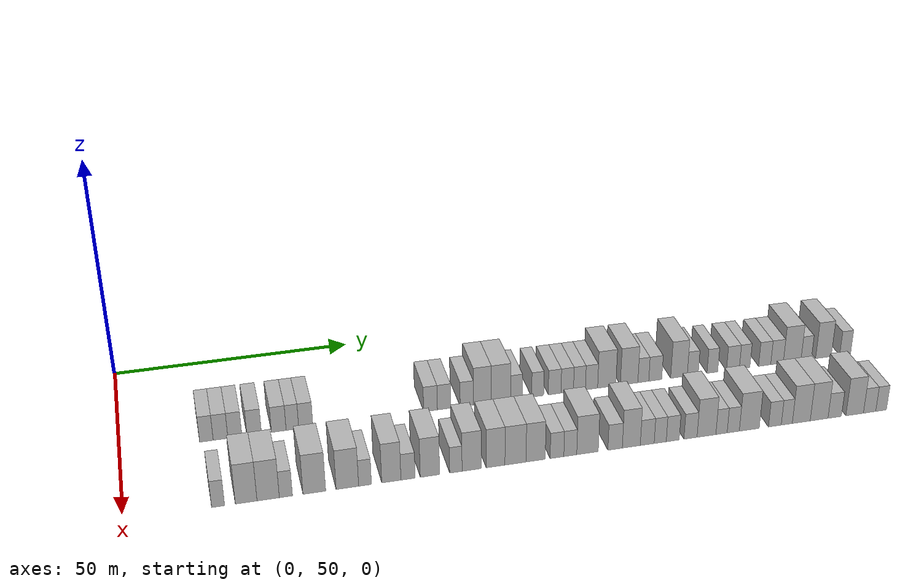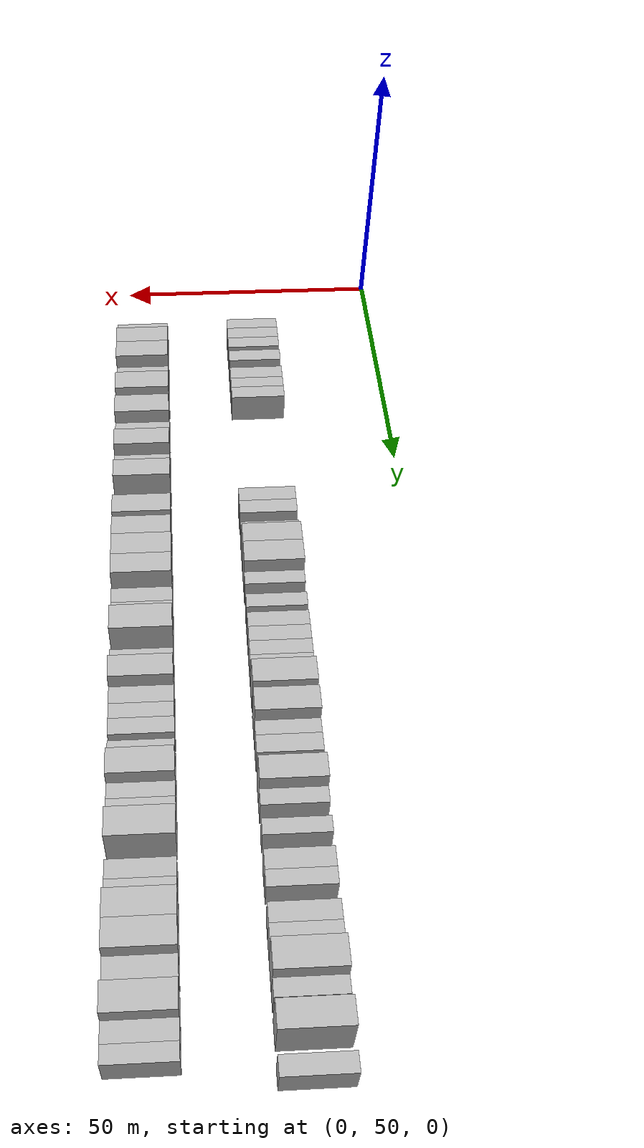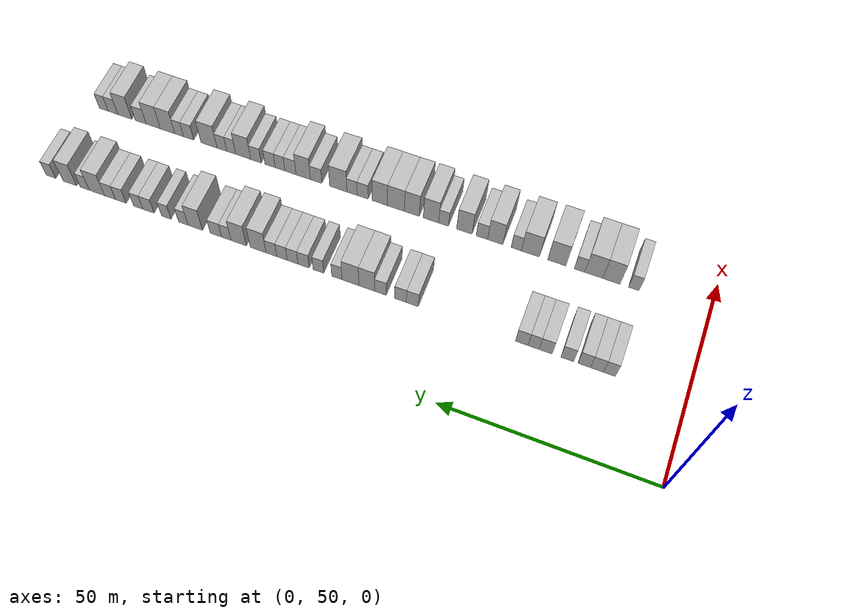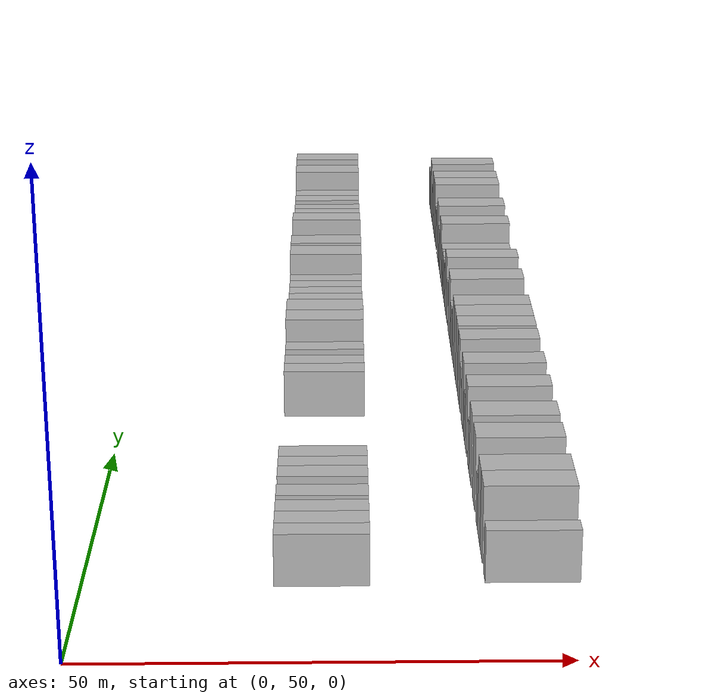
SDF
<sdf version="1.6">
 <world name="default">
  <model name="building_71">
   <static>1</static>
   <pose>25.0000 67.1257 0 0.000000 0.000000 0.000000</pose>
   <link name="link">
    <pose>0 0 3.00 0 0 0</pose>
    <collision name="collision"><geometry><box><size>10.0000 2.6948 6.0000</size></box></geometry></collision>
    <visual name="visual">
     <cast_shadows>0</cast_shadows>
     <geometry><box><size>10.0000 2.6948 6.0000</size></box></geometry>
     <material>
      <script>
       <uri>model://HANNAS_wall/materials/scripts</uri>
       <uri>model://HANNAS_wall/materials/textures</uri>
       <name>vrc/HANNAS_wall</name>
      </script>
     </material>
    </visual>
   </link>
  </model>
  <model name="building_72">
   <static>1</static>
   <pose>25.0000 69.9310 0 0.000000 0.000000 0.000000</pose>
   <link name="link">
    <pose>0 0 3.00 0 0 0</pose>
    <collision name="collision"><geometry><box><size>10.0000 2.9158 6.0000</size></box></geometry></collision>
    <visual name="visual">
     <cast_shadows>0</cast_shadows>
     <geometry><box><size>10.0000 2.9158 6.0000</size></box></geometry>
     <material>
      <script>
       <uri>model://HANNAS_wall/materials/scripts</uri>
       <uri>model://HANNAS_wall/materials/textures</uri>
       <name>vrc/HANNAS_wall</name>
      </script>
     </material>
    </visual>
   </link>
  </model>
  <model name="building_73">
   <static>1</static>
   <pose>25.0000 72.7919 0 0.000000 0.000000 0.000000</pose>
   <link name="link">
    <pose>0 0 3.00 0 0 0</pose>
    <collision name="collision"><geometry><box><size>10.0000 2.8061 6.0000</size></box></geometry></collision>
    <visual name="visual">
     <cast_shadows>0</cast_shadows>
     <geometry><box><size>10.0000 2.8061 6.0000</size></box></geometry>
     <material>
      <script>
       <uri>model://HANNAS_wall/materials/scripts</uri>
       <uri>model://HANNAS_wall/materials/textures</uri>
       <name>vrc/HANNAS_wall</name>
      </script>
     </material>
    </visual>
   </link>
  </model>
  <model name="building_74">
   <static>1</static>
   <pose>25.0000 76.6522 0 0.000000 0.000000 0.000000</pose>
   <link name="link">
    <pose>0 0 3.00 0 0 0</pose>
    <collision name="collision"><geometry><box><size>10.0000 2.9145 6.0000</size></box></geometry></collision>
    <visual name="visual">
     <cast_shadows>0</cast_shadows>
     <geometry><box><size>10.0000 2.9145 6.0000</size></box></geometry>
     <material>
      <script>
       <uri>model://HANNAS_wall/materials/scripts</uri>
       <uri>model://HANNAS_wall/materials/textures</uri>
       <name>vrc/HANNAS_wall</name>
      </script>
     </material>
    </visual>
   </link>
  </model>
  <model name="building_75">
   <static>1</static>
   <pose>25.0000 81.5938 0 0.000000 0.000000 0.000000</pose>
   <link name="link">
    <pose>0 0 3.00 0 0 0</pose>
    <collision name="collision"><geometry><box><size>10.0000 2.9687 6.0000</size></box></geometry></collision>
    <visual name="visual">
     <cast_shadows>0</cast_shadows>
     <geometry><box><size>10.0000 2.9687 6.0000</size></box></geometry>
     <material>
      <script>
       <uri>model://HANNAS_wall/materials/scripts</uri>
       <uri>model://HANNAS_wall/materials/textures</uri>
       <name>vrc/HANNAS_wall</name>
      </script>
     </material>
    </visual>
   </link>
  </model>
  <model name="building_76">
   <static>1</static>
   <pose>25.0000 84.3534 0 0.000000 0.000000 0.000000</pose>
   <link name="link">
    <pose>0 0 3.00 0 0 0</pose>
    <collision name="collision"><geometry><box><size>10.0000 2.5506 6.0000</size></box></geometry></collision>
    <visual name="visual">
     <cast_shadows>0</cast_shadows>
     <geometry><box><size>10.0000 2.5506 6.0000</size></box></geometry>
     <material>
      <script>
       <uri>model://HANNAS_wall/materials/scripts</uri>
       <uri>model://HANNAS_wall/materials/textures</uri>
       <name>vrc/HANNAS_wall</name>
      </script>
     </material>
    </visual>
   </link>
  </model>
  <model name="building_77">
   <static>1</static>
   <pose>25.0000 87.0735 0 0.000000 0.000000 0.000000</pose>
   <link name="link">
    <pose>0 0 3.00 0 0 0</pose>
    <collision name="collision"><geometry><box><size>10.0000 2.8895 6.0000</size></box></geometry></collision>
    <visual name="visual">
     <cast_shadows>0</cast_shadows>
     <geometry><box><size>10.0000 2.8895 6.0000</size></box></geometry>
     <material>
      <script>
       <uri>model://HANNAS_wall/materials/scripts</uri>
       <uri>model://HANNAS_wall/materials/textures</uri>
       <name>vrc/HANNAS_wall</name>
      </script>
     </material>
    </visual>
   </link>
  </model>
  <model name="building_78">
   <static>1</static>
   <pose>25.0000 112.8600 0 0.000000 0.000000 0.000000</pose>
   <link name="link">
    <pose>0 0 3.00 0 0 0</pose>
    <collision name="collision"><geometry><box><size>10.0000 2.8945 6.0000</size></box></geometry></collision>
    <visual name="visual">
     <cast_shadows>0</cast_shadows>
     <geometry><box><size>10.0000 2.8945 6.0000</size></box></geometry>
     <material>
      <script>
       <uri>model://HANNAS_wall/materials/scripts</uri>
       <uri>model://HANNAS_wall/materials/textures</uri>
       <name>vrc/HANNAS_wall</name>
      </script>
     </material>
    </visual>
   </link>
  </model>
  <model name="building_79">
   <static>1</static>
   <pose>25.0000 115.7185 0 0.000000 0.000000 0.000000</pose>
   <link name="link">
    <pose>0 0 3.00 0 0 0</pose>
    <collision name="collision"><geometry><box><size>10.0000 2.8224 6.0000</size></box></geometry></collision>
    <visual name="visual">
     <cast_shadows>0</cast_shadows>
     <geometry><box><size>10.0000 2.8224 6.0000</size></box></geometry>
     <material>
      <script>
       <uri>model://HANNAS_wall/materials/scripts</uri>
       <uri>model://HANNAS_wall/materials/textures</uri>
       <name>vrc/HANNAS_wall</name>
      </script>
     </material>
    </visual>
   </link>
  </model>
  <model name="building_80">
   <static>1</static>
   <pose>25.0000 120.5325 0 0.000000 0.000000 0.000000</pose>
   <link name="link">
    <pose>0 0 3.00 0 0 0</pose>
    <collision name="collision"><geometry><box><size>10.0000 2.8056 6.0000</size></box></geometry></collision>
    <visual name="visual">
     <cast_shadows>0</cast_shadows>
     <geometry><box><size>10.0000 2.8056 6.0000</size></box></geometry>
     <material>
      <script>
       <uri>model://HANNAS_wall/materials/scripts</uri>
       <uri>model://HANNAS_wall/materials/textures</uri>
       <name>vrc/HANNAS_wall</name>
      </script>
     </material>
    </visual>
   </link>
  </model>
  <model name="building_81">
   <static>1</static>
   <pose>25.0000 123.8566 0 0.000000 0.000000 0.000000</pose>
   <link name="link">
    <pose>0 0 4.50 0 0 0</pose>
    <collision name="collision"><geometry><box><size>10.0000 3.8425 9.0000</size></box></geometry></collision>
    <visual name="visual">
     <cast_shadows>0</cast_shadows>
     <geometry><box><size>10.0000 3.8425 9.0000</size></box></geometry>
     <material>
      <script>
       <uri>model://HANNAS_wall/materials/scripts</uri>
       <uri>model://HANNAS_wall/materials/textures</uri>
       <name>vrc/HANNAS_wall</name>
      </script>
     </material>
    </visual>
   </link>
  </model>
  <model name="building_82">
   <static>1</static>
   <pose>25.0000 127.8513 0 0.000000 0.000000 0.000000</pose>
   <link name="link">
    <pose>0 0 4.50 0 0 0</pose>
    <collision name="collision"><geometry><box><size>10.0000 4.1468 9.0000</size></box></geometry></collision>
    <visual name="visual">
     <cast_shadows>0</cast_shadows>
     <geometry><box><size>10.0000 4.1468 9.0000</size></box></geometry>
     <material>
      <script>
       <uri>model://HANNAS_wall/materials/scripts</uri>
       <uri>model://HANNAS_wall/materials/textures</uri>
       <name>vrc/HANNAS_wall</name>
      </script>
     </material>
    </visual>
   </link>
  </model>
  <model name="building_83">
   <static>1</static>
   <pose>25.0000 131.1827 0 0.000000 0.000000 0.000000</pose>
   <link name="link">
    <pose>0 0 3.00 0 0 0</pose>
    <collision name="collision"><geometry><box><size>10.0000 2.5160 6.0000</size></box></geometry></collision>
    <visual name="visual">
     <cast_shadows>0</cast_shadows>
     <geometry><box><size>10.0000 2.5160 6.0000</size></box></geometry>
     <material>
      <script>
       <uri>model://HANNAS_wall/materials/scripts</uri>
       <uri>model://HANNAS_wall/materials/textures</uri>
       <name>vrc/HANNAS_wall</name>
      </script>
     </material>
    </visual>
   </link>
  </model>
  <model name="building_84">
   <static>1</static>
   <pose>25.0000 135.7359 0 0.000000 0.000000 0.000000</pose>
   <link name="link">
    <pose>0 0 3.00 0 0 0</pose>
    <collision name="collision"><geometry><box><size>10.0000 2.5904 6.0000</size></box></geometry></collision>
    <visual name="visual">
     <cast_shadows>0</cast_shadows>
     <geometry><box><size>10.0000 2.5904 6.0000</size></box></geometry>
     <material>
      <script>
       <uri>model://HANNAS_wall/materials/scripts</uri>
       <uri>model://HANNAS_wall/materials/textures</uri>
       <name>vrc/HANNAS_wall</name>
      </script>
     </material>
    </visual>
   </link>
  </model>
  <model name="building_85">
   <static>1</static>
   <pose>25.0000 139.4164 0 0.000000 0.000000 0.000000</pose>
   <link name="link">
    <pose>0 0 3.00 0 0 0</pose>
    <collision name="collision"><geometry><box><size>10.0000 2.7707 6.0000</size></box></geometry></collision>
    <visual name="visual">
     <cast_shadows>0</cast_shadows>
     <geometry><box><size>10.0000 2.7707 6.0000</size></box></geometry>
     <material>
      <script>
       <uri>model://HANNAS_wall/materials/scripts</uri>
       <uri>model://HANNAS_wall/materials/textures</uri>
       <name>vrc/HANNAS_wall</name>
      </script>
     </material>
    </visual>
   </link>
  </model>
  <model name="building_86">
   <static>1</static>
   <pose>25.0000 142.1635 0 0.000000 0.000000 0.000000</pose>
   <link name="link">
    <pose>0 0 3.00 0 0 0</pose>
    <collision name="collision"><geometry><box><size>10.0000 2.7235 6.0000</size></box></geometry></collision>
    <visual name="visual">
     <cast_shadows>0</cast_shadows>
     <geometry><box><size>10.0000 2.7235 6.0000</size></box></geometry>
     <material>
      <script>
       <uri>model://HANNAS_wall/materials/scripts</uri>
       <uri>model://HANNAS_wall/materials/textures</uri>
       <name>vrc/HANNAS_wall</name>
      </script>
     </material>
    </visual>
   </link>
  </model>
  <model name="building_87">
   <static>1</static>
   <pose>25.0000 144.8318 0 0.000000 0.000000 0.000000</pose>
   <link name="link">
    <pose>0 0 3.00 0 0 0</pose>
    <collision name="collision"><geometry><box><size>10.0000 2.6130 6.0000</size></box></geometry></collision>
    <visual name="visual">
     <cast_shadows>0</cast_shadows>
     <geometry><box><size>10.0000 2.6130 6.0000</size></box></geometry>
     <material>
      <script>
       <uri>model://HANNAS_wall/materials/scripts</uri>
       <uri>model://HANNAS_wall/materials/textures</uri>
       <name>vrc/HANNAS_wall</name>
      </script>
     </material>
    </visual>
   </link>
  </model>
  <model name="building_88">
   <static>1</static>
   <pose>25.0000 147.4848 0 0.000000 0.000000 0.000000</pose>
   <link name="link">
    <pose>0 0 3.00 0 0 0</pose>
    <collision name="collision"><geometry><box><size>10.0000 2.6929 6.0000</size></box></geometry></collision>
    <visual name="visual">
     <cast_shadows>0</cast_shadows>
     <geometry><box><size>10.0000 2.6929 6.0000</size></box></geometry>
     <material>
      <script>
       <uri>model://HANNAS_wall/materials/scripts</uri>
       <uri>model://HANNAS_wall/materials/textures</uri>
       <name>vrc/HANNAS_wall</name>
      </script>
     </material>
    </visual>
   </link>
  </model>
  <model name="building_89">
   <static>1</static>
   <pose>25.0000 150.8435 0 0.000000 0.000000 0.000000</pose>
   <link name="link">
    <pose>0 0 4.50 0 0 0</pose>
    <collision name="collision"><geometry><box><size>10.0000 4.0246 9.0000</size></box></geometry></collision>
    <visual name="visual">
     <cast_shadows>0</cast_shadows>
     <geometry><box><size>10.0000 4.0246 9.0000</size></box></geometry>
     <material>
      <script>
       <uri>model://HANNAS_wall/materials/scripts</uri>
       <uri>model://HANNAS_wall/materials/textures</uri>
       <name>vrc/HANNAS_wall</name>
      </script>
     </material>
    </visual>
   </link>
  </model>
  <model name="building_90">
   <static>1</static>
   <pose>25.0000 155.8043 0 0.000000 0.000000 0.000000</pose>
   <link name="link">
    <pose>0 0 4.50 0 0 0</pose>
    <collision name="collision"><geometry><box><size>10.0000 3.8968 9.0000</size></box></geometry></collision>
    <visual name="visual">
     <cast_shadows>0</cast_shadows>
     <geometry><box><size>10.0000 3.8968 9.0000</size></box></geometry>
     <material>
      <script>
       <uri>model://HANNAS_wall/materials/scripts</uri>
       <uri>model://HANNAS_wall/materials/textures</uri>
       <name>vrc/HANNAS_wall</name>
      </script>
     </material>
    </visual>
   </link>
  </model>
  <model name="building_91">
   <static>1</static>
   <pose>25.0000 158.9642 0 0.000000 0.000000 0.000000</pose>
   <link name="link">
    <pose>0 0 3.00 0 0 0</pose>
    <collision name="collision"><geometry><box><size>10.0000 2.4231 6.0000</size></box></geometry></collision>
    <visual name="visual">
     <cast_shadows>0</cast_shadows>
     <geometry><box><size>10.0000 2.4231 6.0000</size></box></geometry>
     <material>
      <script>
       <uri>model://HANNAS_wall/materials/scripts</uri>
       <uri>model://HANNAS_wall/materials/textures</uri>
       <name>vrc/HANNAS_wall</name>
      </script>
     </material>
    </visual>
   </link>
  </model>
  <model name="building_92">
   <static>1</static>
   <pose>25.0000 161.6344 0 0.000000 0.000000 0.000000</pose>
   <link name="link">
    <pose>0 0 3.00 0 0 0</pose>
    <collision name="collision"><geometry><box><size>10.0000 2.9174 6.0000</size></box></geometry></collision>
    <visual name="visual">
     <cast_shadows>0</cast_shadows>
     <geometry><box><size>10.0000 2.9174 6.0000</size></box></geometry>
     <material>
      <script>
       <uri>model://HANNAS_wall/materials/scripts</uri>
       <uri>model://HANNAS_wall/materials/textures</uri>
       <name>vrc/HANNAS_wall</name>
      </script>
     </material>
    </visual>
   </link>
  </model>
  <model name="building_93">
   <static>1</static>
   <pose>25.0000 166.9565 0 0.000000 0.000000 0.000000</pose>
   <link name="link">
    <pose>0 0 4.50 0 0 0</pose>
    <collision name="collision"><geometry><box><size>10.0000 3.7269 9.0000</size></box></geometry></collision>
    <visual name="visual">
     <cast_shadows>0</cast_shadows>
     <geometry><box><size>10.0000 3.7269 9.0000</size></box></geometry>
     <material>
      <script>
       <uri>model://HANNAS_wall/materials/scripts</uri>
       <uri>model://HANNAS_wall/materials/textures</uri>
       <name>vrc/HANNAS_wall</name>
      </script>
     </material>
    </visual>
   </link>
  </model>
  <model name="building_94">
   <static>1</static>
   <pose>25.0000 170.0667 0 0.000000 0.000000 0.000000</pose>
   <link name="link">
    <pose>0 0 3.00 0 0 0</pose>
    <collision name="collision"><geometry><box><size>10.0000 2.4934 6.0000</size></box></geometry></collision>
    <visual name="visual">
     <cast_shadows>0</cast_shadows>
     <geometry><box><size>10.0000 2.4934 6.0000</size></box></geometry>
     <material>
      <script>
       <uri>model://HANNAS_wall/materials/scripts</uri>
       <uri>model://HANNAS_wall/materials/textures</uri>
       <name>vrc/HANNAS_wall</name>
      </script>
     </material>
    </visual>
   </link>
  </model>
  <model name="building_95">
   <static>1</static>
   <pose>25.0000 174.5325 0 0.000000 0.000000 0.000000</pose>
   <link name="link">
    <pose>0 0 3.00 0 0 0</pose>
    <collision name="collision"><geometry><box><size>10.0000 2.4383 6.0000</size></box></geometry></collision>
    <visual name="visual">
     <cast_shadows>0</cast_shadows>
     <geometry><box><size>10.0000 2.4383 6.0000</size></box></geometry>
     <material>
      <script>
       <uri>model://HANNAS_wall/materials/scripts</uri>
       <uri>model://HANNAS_wall/materials/textures</uri>
       <name>vrc/HANNAS_wall</name>
      </script>
     </material>
    </visual>
   </link>
  </model>
  <model name="building_96">
   <static>1</static>
   <pose>25.0000 179.2226 0 0.000000 0.000000 0.000000</pose>
   <link name="link">
    <pose>0 0 3.00 0 0 0</pose>
    <collision name="collision"><geometry><box><size>10.0000 2.9419 6.0000</size></box></geometry></collision>
    <visual name="visual">
     <cast_shadows>0</cast_shadows>
     <geometry><box><size>10.0000 2.9419 6.0000</size></box></geometry>
     <material>
      <script>
       <uri>model://HANNAS_wall/materials/scripts</uri>
       <uri>model://HANNAS_wall/materials/textures</uri>
       <name>vrc/HANNAS_wall</name>
      </script>
     </material>
    </visual>
   </link>
  </model>
  <model name="building_97">
   <static>1</static>
   <pose>25.0000 181.9106 0 0.000000 0.000000 0.000000</pose>
   <link name="link">
    <pose>0 0 3.00 0 0 0</pose>
    <collision name="collision"><geometry><box><size>10.0000 2.4340 6.0000</size></box></geometry></collision>
    <visual name="visual">
     <cast_shadows>0</cast_shadows>
     <geometry><box><size>10.0000 2.4340 6.0000</size></box></geometry>
     <material>
      <script>
       <uri>model://HANNAS_wall/materials/scripts</uri>
       <uri>model://HANNAS_wall/materials/textures</uri>
       <name>vrc/HANNAS_wall</name>
      </script>
     </material>
    </visual>
   </link>
  </model>
  <model name="building_98">
   <static>1</static>
   <pose>25.0000 186.5344 0 0.000000 0.000000 0.000000</pose>
   <link name="link">
    <pose>0 0 3.00 0 0 0</pose>
    <collision name="collision"><geometry><box><size>10.0000 2.8135 6.0000</size></box></geometry></collision>
    <visual name="visual">
     <cast_shadows>0</cast_shadows>
     <geometry><box><size>10.0000 2.8135 6.0000</size></box></geometry>
     <material>
      <script>
       <uri>model://HANNAS_wall/materials/scripts</uri>
       <uri>model://HANNAS_wall/materials/textures</uri>
       <name>vrc/HANNAS_wall</name>
      </script>
     </material>
    </visual>
   </link>
  </model>
  <model name="building_99">
   <static>1</static>
   <pose>25.0000 189.3942 0 0.000000 0.000000 0.000000</pose>
   <link name="link">
    <pose>0 0 3.00 0 0 0</pose>
    <collision name="collision"><geometry><box><size>10.0000 2.9061 6.0000</size></box></geometry></collision>
    <visual name="visual">
     <cast_shadows>0</cast_shadows>
     <geometry><box><size>10.0000 2.9061 6.0000</size></box></geometry>
     <material>
      <script>
       <uri>model://HANNAS_wall/materials/scripts</uri>
       <uri>model://HANNAS_wall/materials/textures</uri>
       <name>vrc/HANNAS_wall</name>
      </script>
     </material>
    </visual>
   </link>
  </model>
  <model name="building_100">
   <static>1</static>
   <pose>25.0000 192.9049 0 0.000000 0.000000 0.000000</pose>
   <link name="link">
    <pose>0 0 4.50 0 0 0</pose>
    <collision name="collision"><geometry><box><size>10.0000 4.1154 9.0000</size></box></geometry></collision>
    <visual name="visual">
     <cast_shadows>0</cast_shadows>
     <geometry><box><size>10.0000 4.1154 9.0000</size></box></geometry>
     <material>
      <script>
       <uri>model://HANNAS_wall/materials/scripts</uri>
       <uri>model://HANNAS_wall/materials/textures</uri>
       <name>vrc/HANNAS_wall</name>
      </script>
     </material>
    </visual>
   </link>
  </model>
  <model name="building_101">
   <static>1</static>
   <pose>25.0000 196.1802 0 0.000000 0.000000 0.000000</pose>
   <link name="link">
    <pose>0 0 3.00 0 0 0</pose>
    <collision name="collision"><geometry><box><size>10.0000 2.4353 6.0000</size></box></geometry></collision>
    <visual name="visual">
     <cast_shadows>0</cast_shadows>
     <geometry><box><size>10.0000 2.4353 6.0000</size></box></geometry>
     <material>
      <script>
       <uri>model://HANNAS_wall/materials/scripts</uri>
       <uri>model://HANNAS_wall/materials/textures</uri>
       <name>vrc/HANNAS_wall</name>
      </script>
     </material>
    </visual>
   </link>
  </model>
  <model name="building_102">
   <static>1</static>
   <pose>25.0000 200.2350 0 0.000000 0.000000 0.000000</pose>
   <link name="link">
    <pose>0 0 4.50 0 0 0</pose>
    <collision name="collision"><geometry><box><size>10.0000 3.6743 9.0000</size></box></geometry></collision>
    <visual name="visual">
     <cast_shadows>0</cast_shadows>
     <geometry><box><size>10.0000 3.6743 9.0000</size></box></geometry>
     <material>
      <script>
       <uri>model://HANNAS_wall/materials/scripts</uri>
       <uri>model://HANNAS_wall/materials/textures</uri>
       <name>vrc/HANNAS_wall</name>
      </script>
     </material>
    </visual>
   </link>
  </model>
  <model name="building_103">
   <static>1</static>
   <pose>25.0000 205.3592 0 0.000000 0.000000 0.000000</pose>
   <link name="link">
    <pose>0 0 3.00 0 0 0</pose>
    <collision name="collision"><geometry><box><size>10.0000 2.5741 6.0000</size></box></geometry></collision>
    <visual name="visual">
     <cast_shadows>0</cast_shadows>
     <geometry><box><size>10.0000 2.5741 6.0000</size></box></geometry>
     <material>
      <script>
       <uri>model://HANNAS_wall/materials/scripts</uri>
       <uri>model://HANNAS_wall/materials/textures</uri>
       <name>vrc/HANNAS_wall</name>
      </script>
     </material>
    </visual>
   </link>
  </model>
  <model name="building_172">
   <static>1</static>
   <pose>47.0000 67.5746 0 0.000000 0.000000 0.000000</pose>
   <link name="link">
    <pose>0 0 3.00 0 0 0</pose>
    <collision name="collision"><geometry><box><size>10.0000 2.4293 6.0000</size></box></geometry></collision>
    <visual name="visual">
     <cast_shadows>0</cast_shadows>
     <geometry><box><size>10.0000 2.4293 6.0000</size></box></geometry>
     <material>
      <script>
       <uri>model://HANNAS_wall/materials/scripts</uri>
       <uri>model://HANNAS_wall/materials/textures</uri>
       <name>vrc/HANNAS_wall</name>
      </script>
     </material>
    </visual>
   </link>
  </model>
  <model name="building_173">
   <static>1</static>
   <pose>47.0000 72.8246 0 0.000000 0.000000 0.000000</pose>
   <link name="link">
    <pose>0 0 4.50 0 0 0</pose>
    <collision name="collision"><geometry><box><size>10.0000 4.0706 9.0000</size></box></geometry></collision>
    <visual name="visual">
     <cast_shadows>0</cast_shadows>
     <geometry><box><size>10.0000 4.0706 9.0000</size></box></geometry>
     <material>
      <script>
       <uri>model://HANNAS_wall/materials/scripts</uri>
       <uri>model://HANNAS_wall/materials/textures</uri>
       <name>vrc/HANNAS_wall</name>
      </script>
     </material>
    </visual>
   </link>
  </model>
  <model name="building_174">
   <static>1</static>
   <pose>47.0000 76.9690 0 0.000000 0.000000 0.000000</pose>
   <link name="link">
    <pose>0 0 4.50 0 0 0</pose>
    <collision name="collision"><geometry><box><size>10.0000 4.2183 9.0000</size></box></geometry></collision>
    <visual name="visual">
     <cast_shadows>0</cast_shadows>
     <geometry><box><size>10.0000 4.2183 9.0000</size></box></geometry>
     <material>
      <script>
       <uri>model://HANNAS_wall/materials/scripts</uri>
       <uri>model://HANNAS_wall/materials/textures</uri>
       <name>vrc/HANNAS_wall</name>
      </script>
     </material>
    </visual>
   </link>
  </model>
  <model name="building_175">
   <static>1</static>
   <pose>47.0000 80.3233 0 0.000000 0.000000 0.000000</pose>
   <link name="link">
    <pose>0 0 3.00 0 0 0</pose>
    <collision name="collision"><geometry><box><size>10.0000 2.4903 6.0000</size></box></geometry></collision>
    <visual name="visual">
     <cast_shadows>0</cast_shadows>
     <geometry><box><size>10.0000 2.4903 6.0000</size></box></geometry>
     <material>
      <script>
       <uri>model://HANNAS_wall/materials/scripts</uri>
       <uri>model://HANNAS_wall/materials/textures</uri>
       <name>vrc/HANNAS_wall</name>
      </script>
     </material>
    </visual>
   </link>
  </model>
  <model name="building_176">
   <static>1</static>
   <pose>47.0000 85.7403 0 0.000000 0.000000 0.000000</pose>
   <link name="link">
    <pose>0 0 4.50 0 0 0</pose>
    <collision name="collision"><geometry><box><size>10.0000 4.3436 9.0000</size></box></geometry></collision>
    <visual name="visual">
     <cast_shadows>0</cast_shadows>
     <geometry><box><size>10.0000 4.3436 9.0000</size></box></geometry>
     <material>
      <script>
       <uri>model://HANNAS_wall/materials/scripts</uri>
       <uri>model://HANNAS_wall/materials/textures</uri>
       <name>vrc/HANNAS_wall</name>
      </script>
     </material>
    </visual>
   </link>
  </model>
  <model name="building_177">
   <static>1</static>
   <pose>47.0000 92.0833 0 0.000000 0.000000 0.000000</pose>
   <link name="link">
    <pose>0 0 4.50 0 0 0</pose>
    <collision name="collision"><geometry><box><size>10.0000 4.3424 9.0000</size></box></geometry></collision>
    <visual name="visual">
     <cast_shadows>0</cast_shadows>
     <geometry><box><size>10.0000 4.3424 9.0000</size></box></geometry>
     <material>
      <script>
       <uri>model://HANNAS_wall/materials/scripts</uri>
       <uri>model://HANNAS_wall/materials/textures</uri>
       <name>vrc/HANNAS_wall</name>
      </script>
     </material>
    </visual>
   </link>
  </model>
  <model name="building_178">
   <static>1</static>
   <pose>47.0000 95.4978 0 0.000000 0.000000 0.000000</pose>
   <link name="link">
    <pose>0 0 3.00 0 0 0</pose>
    <collision name="collision"><geometry><box><size>10.0000 2.4865 6.0000</size></box></geometry></collision>
    <visual name="visual">
     <cast_shadows>0</cast_shadows>
     <geometry><box><size>10.0000 2.4865 6.0000</size></box></geometry>
     <material>
      <script>
       <uri>model://HANNAS_wall/materials/scripts</uri>
       <uri>model://HANNAS_wall/materials/textures</uri>
       <name>vrc/HANNAS_wall</name>
      </script>
     </material>
    </visual>
   </link>
  </model>
  <model name="building_179">
   <static>1</static>
   <pose>47.0000 100.6153 0 0.000000 0.000000 0.000000</pose>
   <link name="link">
    <pose>0 0 4.50 0 0 0</pose>
    <collision name="collision"><geometry><box><size>10.0000 3.7485 9.0000</size></box></geometry></collision>
    <visual name="visual">
     <cast_shadows>0</cast_shadows>
     <geometry><box><size>10.0000 3.7485 9.0000</size></box></geometry>
     <material>
      <script>
       <uri>model://HANNAS_wall/materials/scripts</uri>
       <uri>model://HANNAS_wall/materials/textures</uri>
       <name>vrc/HANNAS_wall</name>
      </script>
     </material>
    </visual>
   </link>
  </model>
  <model name="building_180">
   <static>1</static>
   <pose>47.0000 103.8852 0 0.000000 0.000000 0.000000</pose>
   <link name="link">
    <pose>0 0 3.00 0 0 0</pose>
    <collision name="collision"><geometry><box><size>10.0000 2.7913 6.0000</size></box></geometry></collision>
    <visual name="visual">
     <cast_shadows>0</cast_shadows>
     <geometry><box><size>10.0000 2.7913 6.0000</size></box></geometry>
     <material>
      <script>
       <uri>model://HANNAS_wall/materials/scripts</uri>
       <uri>model://HANNAS_wall/materials/textures</uri>
       <name>vrc/HANNAS_wall</name>
      </script>
     </material>
    </visual>
   </link>
  </model>
  <model name="building_181">
   <static>1</static>
   <pose>47.0000 108.1911 0 0.000000 0.000000 0.000000</pose>
   <link name="link">
    <pose>0 0 4.50 0 0 0</pose>
    <collision name="collision"><geometry><box><size>10.0000 3.8206 9.0000</size></box></geometry></collision>
    <visual name="visual">
     <cast_shadows>0</cast_shadows>
     <geometry><box><size>10.0000 3.8206 9.0000</size></box></geometry>
     <material>
      <script>
       <uri>model://HANNAS_wall/materials/scripts</uri>
       <uri>model://HANNAS_wall/materials/textures</uri>
       <name>vrc/HANNAS_wall</name>
      </script>
     </material>
    </visual>
   </link>
  </model>
  <model name="building_182">
   <static>1</static>
   <pose>47.0000 113.3315 0 0.000000 0.000000 0.000000</pose>
   <link name="link">
    <pose>0 0 3.00 0 0 0</pose>
    <collision name="collision"><geometry><box><size>10.0000 2.4601 6.0000</size></box></geometry></collision>
    <visual name="visual">
     <cast_shadows>0</cast_shadows>
     <geometry><box><size>10.0000 2.4601 6.0000</size></box></geometry>
     <material>
      <script>
       <uri>model://HANNAS_wall/materials/scripts</uri>
       <uri>model://HANNAS_wall/materials/textures</uri>
       <name>vrc/HANNAS_wall</name>
      </script>
     </material>
    </visual>
   </link>
  </model>
  <model name="building_183">
   <static>1</static>
   <pose>47.0000 116.4758 0 0.000000 0.000000 0.000000</pose>
   <link name="link">
    <pose>0 0 4.50 0 0 0</pose>
    <collision name="collision"><geometry><box><size>10.0000 3.8286 9.0000</size></box></geometry></collision>
    <visual name="visual">
     <cast_shadows>0</cast_shadows>
     <geometry><box><size>10.0000 3.8286 9.0000</size></box></geometry>
     <material>
      <script>
       <uri>model://HANNAS_wall/materials/scripts</uri>
       <uri>model://HANNAS_wall/materials/textures</uri>
       <name>vrc/HANNAS_wall</name>
      </script>
     </material>
    </visual>
   </link>
  </model>
  <model name="building_184">
   <static>1</static>
   <pose>47.0000 121.2653 0 0.000000 0.000000 0.000000</pose>
   <link name="link">
    <pose>0 0 4.50 0 0 0</pose>
    <collision name="collision"><geometry><box><size>10.0000 3.7503 9.0000</size></box></geometry></collision>
    <visual name="visual">
     <cast_shadows>0</cast_shadows>
     <geometry><box><size>10.0000 3.7503 9.0000</size></box></geometry>
     <material>
      <script>
       <uri>model://HANNAS_wall/materials/scripts</uri>
       <uri>model://HANNAS_wall/materials/textures</uri>
       <name>vrc/HANNAS_wall</name>
      </script>
     </material>
    </visual>
   </link>
  </model>
  <model name="building_185">
   <static>1</static>
   <pose>47.0000 125.2774 0 0.000000 0.000000 0.000000</pose>
   <link name="link">
    <pose>0 0 4.50 0 0 0</pose>
    <collision name="collision"><geometry><box><size>10.0000 4.2738 9.0000</size></box></geometry></collision>
    <visual name="visual">
     <cast_shadows>0</cast_shadows>
     <geometry><box><size>10.0000 4.2738 9.0000</size></box></geometry>
     <material>
      <script>
       <uri>model://HANNAS_wall/materials/scripts</uri>
       <uri>model://HANNAS_wall/materials/textures</uri>
       <name>vrc/HANNAS_wall</name>
      </script>
     </material>
    </visual>
   </link>
  </model>
  <model name="building_186">
   <static>1</static>
   <pose>47.0000 129.3587 0 0.000000 0.000000 0.000000</pose>
   <link name="link">
    <pose>0 0 4.50 0 0 0</pose>
    <collision name="collision"><geometry><box><size>10.0000 3.8887 9.0000</size></box></geometry></collision>
    <visual name="visual">
     <cast_shadows>0</cast_shadows>
     <geometry><box><size>10.0000 3.8887 9.0000</size></box></geometry>
     <material>
      <script>
       <uri>model://HANNAS_wall/materials/scripts</uri>
       <uri>model://HANNAS_wall/materials/textures</uri>
       <name>vrc/HANNAS_wall</name>
      </script>
     </material>
    </visual>
   </link>
  </model>
  <model name="building_187">
   <static>1</static>
   <pose>47.0000 133.7022 0 0.000000 0.000000 0.000000</pose>
   <link name="link">
    <pose>0 0 3.00 0 0 0</pose>
    <collision name="collision"><geometry><box><size>10.0000 2.7983 6.0000</size></box></geometry></collision>
    <visual name="visual">
     <cast_shadows>0</cast_shadows>
     <geometry><box><size>10.0000 2.7983 6.0000</size></box></geometry>
     <material>
      <script>
       <uri>model://HANNAS_wall/materials/scripts</uri>
       <uri>model://HANNAS_wall/materials/textures</uri>
       <name>vrc/HANNAS_wall</name>
      </script>
     </material>
    </visual>
   </link>
  </model>
  <model name="building_188">
   <static>1</static>
   <pose>47.0000 136.4230 0 0.000000 0.000000 0.000000</pose>
   <link name="link">
    <pose>0 0 3.00 0 0 0</pose>
    <collision name="collision"><geometry><box><size>10.0000 2.6433 6.0000</size></box></geometry></collision>
    <visual name="visual">
     <cast_shadows>0</cast_shadows>
     <geometry><box><size>10.0000 2.6433 6.0000</size></box></geometry>
     <material>
      <script>
       <uri>model://HANNAS_wall/materials/scripts</uri>
       <uri>model://HANNAS_wall/materials/textures</uri>
       <name>vrc/HANNAS_wall</name>
      </script>
     </material>
    </visual>
   </link>
  </model>
  <model name="building_189">
   <static>1</static>
   <pose>47.0000 139.9621 0 0.000000 0.000000 0.000000</pose>
   <link name="link">
    <pose>0 0 4.50 0 0 0</pose>
    <collision name="collision"><geometry><box><size>10.0000 4.4349 9.0000</size></box></geometry></collision>
    <visual name="visual">
     <cast_shadows>0</cast_shadows>
     <geometry><box><size>10.0000 4.4349 9.0000</size></box></geometry>
     <material>
      <script>
       <uri>model://HANNAS_wall/materials/scripts</uri>
       <uri>model://HANNAS_wall/materials/textures</uri>
       <name>vrc/HANNAS_wall</name>
      </script>
     </material>
    </visual>
   </link>
  </model>
  <model name="building_190">
   <static>1</static>
   <pose>47.0000 145.6743 0 0.000000 0.000000 0.000000</pose>
   <link name="link">
    <pose>0 0 3.00 0 0 0</pose>
    <collision name="collision"><geometry><box><size>10.0000 2.9894 6.0000</size></box></geometry></collision>
    <visual name="visual">
     <cast_shadows>0</cast_shadows>
     <geometry><box><size>10.0000 2.9894 6.0000</size></box></geometry>
     <material>
      <script>
       <uri>model://HANNAS_wall/materials/scripts</uri>
       <uri>model://HANNAS_wall/materials/textures</uri>
       <name>vrc/HANNAS_wall</name>
      </script>
     </material>
    </visual>
   </link>
  </model>
  <model name="building_191">
   <static>1</static>
   <pose>47.0000 149.0479 0 0.000000 0.000000 0.000000</pose>
   <link name="link">
    <pose>0 0 4.50 0 0 0</pose>
    <collision name="collision"><geometry><box><size>10.0000 3.7579 9.0000</size></box></geometry></collision>
    <visual name="visual">
     <cast_shadows>0</cast_shadows>
     <geometry><box><size>10.0000 3.7579 9.0000</size></box></geometry>
     <material>
      <script>
       <uri>model://HANNAS_wall/materials/scripts</uri>
       <uri>model://HANNAS_wall/materials/textures</uri>
       <name>vrc/HANNAS_wall</name>
      </script>
     </material>
    </visual>
   </link>
  </model>
  <model name="building_192">
   <static>1</static>
   <pose>47.0000 152.3821 0 0.000000 0.000000 0.000000</pose>
   <link name="link">
    <pose>0 0 3.00 0 0 0</pose>
    <collision name="collision"><geometry><box><size>10.0000 2.9105 6.0000</size></box></geometry></collision>
    <visual name="visual">
     <cast_shadows>0</cast_shadows>
     <geometry><box><size>10.0000 2.9105 6.0000</size></box></geometry>
     <material>
      <script>
       <uri>model://HANNAS_wall/materials/scripts</uri>
       <uri>model://HANNAS_wall/materials/textures</uri>
       <name>vrc/HANNAS_wall</name>
      </script>
     </material>
    </visual>
   </link>
  </model>
  <model name="building_193">
   <static>1</static>
   <pose>47.0000 155.1083 0 0.000000 0.000000 0.000000</pose>
   <link name="link">
    <pose>0 0 3.00 0 0 0</pose>
    <collision name="collision"><geometry><box><size>10.0000 2.5419 6.0000</size></box></geometry></collision>
    <visual name="visual">
     <cast_shadows>0</cast_shadows>
     <geometry><box><size>10.0000 2.5419 6.0000</size></box></geometry>
     <material>
      <script>
       <uri>model://HANNAS_wall/materials/scripts</uri>
       <uri>model://HANNAS_wall/materials/textures</uri>
       <name>vrc/HANNAS_wall</name>
      </script>
     </material>
    </visual>
   </link>
  </model>
  <model name="building_194">
   <static>1</static>
   <pose>47.0000 157.7483 0 0.000000 0.000000 0.000000</pose>
   <link name="link">
    <pose>0 0 3.00 0 0 0</pose>
    <collision name="collision"><geometry><box><size>10.0000 2.7381 6.0000</size></box></geometry></collision>
    <visual name="visual">
     <cast_shadows>0</cast_shadows>
     <geometry><box><size>10.0000 2.7381 6.0000</size></box></geometry>
     <material>
      <script>
       <uri>model://HANNAS_wall/materials/scripts</uri>
       <uri>model://HANNAS_wall/materials/textures</uri>
       <name>vrc/HANNAS_wall</name>
      </script>
     </material>
    </visual>
   </link>
  </model>
  <model name="building_195">
   <static>1</static>
   <pose>47.0000 161.5069 0 0.000000 0.000000 0.000000</pose>
   <link name="link">
    <pose>0 0 3.00 0 0 0</pose>
    <collision name="collision"><geometry><box><size>10.0000 2.7793 6.0000</size></box></geometry></collision>
    <visual name="visual">
     <cast_shadows>0</cast_shadows>
     <geometry><box><size>10.0000 2.7793 6.0000</size></box></geometry>
     <material>
      <script>
       <uri>model://HANNAS_wall/materials/scripts</uri>
       <uri>model://HANNAS_wall/materials/textures</uri>
       <name>vrc/HANNAS_wall</name>
      </script>
     </material>
    </visual>
   </link>
  </model>
  <model name="building_196">
   <static>1</static>
   <pose>47.0000 164.9075 0 0.000000 0.000000 0.000000</pose>
   <link name="link">
    <pose>0 0 4.50 0 0 0</pose>
    <collision name="collision"><geometry><box><size>10.0000 4.0219 9.0000</size></box></geometry></collision>
    <visual name="visual">
     <cast_shadows>0</cast_shadows>
     <geometry><box><size>10.0000 4.0219 9.0000</size></box></geometry>
     <material>
      <script>
       <uri>model://HANNAS_wall/materials/scripts</uri>
       <uri>model://HANNAS_wall/materials/textures</uri>
       <name>vrc/HANNAS_wall</name>
      </script>
     </material>
    </visual>
   </link>
  </model>
  <model name="building_197">
   <static>1</static>
   <pose>47.0000 168.1227 0 0.000000 0.000000 0.000000</pose>
   <link name="link">
    <pose>0 0 3.00 0 0 0</pose>
    <collision name="collision"><geometry><box><size>10.0000 2.4086 6.0000</size></box></geometry></collision>
    <visual name="visual">
     <cast_shadows>0</cast_shadows>
     <geometry><box><size>10.0000 2.4086 6.0000</size></box></geometry>
     <material>
      <script>
       <uri>model://HANNAS_wall/materials/scripts</uri>
       <uri>model://HANNAS_wall/materials/textures</uri>
       <name>vrc/HANNAS_wall</name>
      </script>
     </material>
    </visual>
   </link>
  </model>
  <model name="building_198">
   <static>1</static>
   <pose>47.0000 170.6389 0 0.000000 0.000000 0.000000</pose>
   <link name="link">
    <pose>0 0 3.00 0 0 0</pose>
    <collision name="collision"><geometry><box><size>10.0000 2.6238 6.0000</size></box></geometry></collision>
    <visual name="visual">
     <cast_shadows>0</cast_shadows>
     <geometry><box><size>10.0000 2.6238 6.0000</size></box></geometry>
     <material>
      <script>
       <uri>model://HANNAS_wall/materials/scripts</uri>
       <uri>model://HANNAS_wall/materials/textures</uri>
       <name>vrc/HANNAS_wall</name>
      </script>
     </material>
    </visual>
   </link>
  </model>
  <model name="building_199">
   <static>1</static>
   <pose>47.0000 174.0981 0 0.000000 0.000000 0.000000</pose>
   <link name="link">
    <pose>0 0 4.50 0 0 0</pose>
    <collision name="collision"><geometry><box><size>10.0000 4.2945 9.0000</size></box></geometry></collision>
    <visual name="visual">
     <cast_shadows>0</cast_shadows>
     <geometry><box><size>10.0000 4.2945 9.0000</size></box></geometry>
     <material>
      <script>
       <uri>model://HANNAS_wall/materials/scripts</uri>
       <uri>model://HANNAS_wall/materials/textures</uri>
       <name>vrc/HANNAS_wall</name>
      </script>
     </material>
    </visual>
   </link>
  </model>
  <model name="building_200">
   <static>1</static>
   <pose>47.0000 179.6342 0 0.000000 0.000000 0.000000</pose>
   <link name="link">
    <pose>0 0 3.00 0 0 0</pose>
    <collision name="collision"><geometry><box><size>10.0000 2.7777 6.0000</size></box></geometry></collision>
    <visual name="visual">
     <cast_shadows>0</cast_shadows>
     <geometry><box><size>10.0000 2.7777 6.0000</size></box></geometry>
     <material>
      <script>
       <uri>model://HANNAS_wall/materials/scripts</uri>
       <uri>model://HANNAS_wall/materials/textures</uri>
       <name>vrc/HANNAS_wall</name>
      </script>
     </material>
    </visual>
   </link>
  </model>
  <model name="building_201">
   <static>1</static>
   <pose>47.0000 182.2275 0 0.000000 0.000000 0.000000</pose>
   <link name="link">
    <pose>0 0 3.00 0 0 0</pose>
    <collision name="collision"><geometry><box><size>10.0000 2.4090 6.0000</size></box></geometry></collision>
    <visual name="visual">
     <cast_shadows>0</cast_shadows>
     <geometry><box><size>10.0000 2.4090 6.0000</size></box></geometry>
     <material>
      <script>
       <uri>model://HANNAS_wall/materials/scripts</uri>
       <uri>model://HANNAS_wall/materials/textures</uri>
       <name>vrc/HANNAS_wall</name>
      </script>
     </material>
    </visual>
   </link>
  </model>
  <model name="building_202">
   <static>1</static>
   <pose>47.0000 185.3953 0 0.000000 0.000000 0.000000</pose>
   <link name="link">
    <pose>0 0 4.50 0 0 0</pose>
    <collision name="collision"><geometry><box><size>10.0000 3.9267 9.0000</size></box></geometry></collision>
    <visual name="visual">
     <cast_shadows>0</cast_shadows>
     <geometry><box><size>10.0000 3.9267 9.0000</size></box></geometry>
     <material>
      <script>
       <uri>model://HANNAS_wall/materials/scripts</uri>
       <uri>model://HANNAS_wall/materials/textures</uri>
       <name>vrc/HANNAS_wall</name>
      </script>
     </material>
    </visual>
   </link>
  </model>
  <model name="building_203">
   <static>1</static>
   <pose>47.0000 189.3199 0 0.000000 0.000000 0.000000</pose>
   <link name="link">
    <pose>0 0 4.50 0 0 0</pose>
    <collision name="collision"><geometry><box><size>10.0000 3.9225 9.0000</size></box></geometry></collision>
    <visual name="visual">
     <cast_shadows>0</cast_shadows>
     <geometry><box><size>10.0000 3.9225 9.0000</size></box></geometry>
     <material>
      <script>
       <uri>model://HANNAS_wall/materials/scripts</uri>
       <uri>model://HANNAS_wall/materials/textures</uri>
       <name>vrc/HANNAS_wall</name>
      </script>
     </material>
    </visual>
   </link>
  </model>
  <model name="building_204">
   <static>1</static>
   <pose>47.0000 192.7661 0 0.000000 0.000000 0.000000</pose>
   <link name="link">
    <pose>0 0 3.00 0 0 0</pose>
    <collision name="collision"><geometry><box><size>10.0000 2.9699 6.0000</size></box></geometry></collision>
    <visual name="visual">
     <cast_shadows>0</cast_shadows>
     <geometry><box><size>10.0000 2.9699 6.0000</size></box></geometry>
     <material>
      <script>
       <uri>model://HANNAS_wall/materials/scripts</uri>
       <uri>model://HANNAS_wall/materials/textures</uri>
       <name>vrc/HANNAS_wall</name>
      </script>
     </material>
    </visual>
   </link>
  </model>
  <model name="building_205">
   <static>1</static>
   <pose>47.0000 197.1999 0 0.000000 0.000000 0.000000</pose>
   <link name="link">
    <pose>0 0 4.50 0 0 0</pose>
    <collision name="collision"><geometry><box><size>10.0000 3.8978 9.0000</size></box></geometry></collision>
    <visual name="visual">
     <cast_shadows>0</cast_shadows>
     <geometry><box><size>10.0000 3.8978 9.0000</size></box></geometry>
     <material>
      <script>
       <uri>model://HANNAS_wall/materials/scripts</uri>
       <uri>model://HANNAS_wall/materials/textures</uri>
       <name>vrc/HANNAS_wall</name>
      </script>
     </material>
    </visual>
   </link>
  </model>
  <model name="building_206">
   <static>1</static>
   <pose>47.0000 200.5232 0 0.000000 0.000000 0.000000</pose>
   <link name="link">
    <pose>0 0 3.00 0 0 0</pose>
    <collision name="collision"><geometry><box><size>10.0000 2.7488 6.0000</size></box></geometry></collision>
    <visual name="visual">
     <cast_shadows>0</cast_shadows>
     <geometry><box><size>10.0000 2.7488 6.0000</size></box></geometry>
     <material>
      <script>
       <uri>model://HANNAS_wall/materials/scripts</uri>
       <uri>model://HANNAS_wall/materials/textures</uri>
       <name>vrc/HANNAS_wall</name>
      </script>
     </material>
    </visual>
   </link>
  </model>
  <model name="building_207">
   <static>1</static>
   <pose>47.0000 203.0980 0 0.000000 0.000000 0.000000</pose>
   <link name="link">
    <pose>0 0 3.00 0 0 0</pose>
    <collision name="collision"><geometry><box><size>10.0000 2.4007 6.0000</size></box></geometry></collision>
    <visual name="visual">
     <cast_shadows>0</cast_shadows>
     <geometry><box><size>10.0000 2.4007 6.0000</size></box></geometry>
     <material>
      <script>
       <uri>model://HANNAS_wall/materials/scripts</uri>
       <uri>model://HANNAS_wall/materials/textures</uri>
       <name>vrc/HANNAS_wall</name>
      </script>
     </material>
    </visual>
   </link>
  </model>
 </world>
</sdf>
